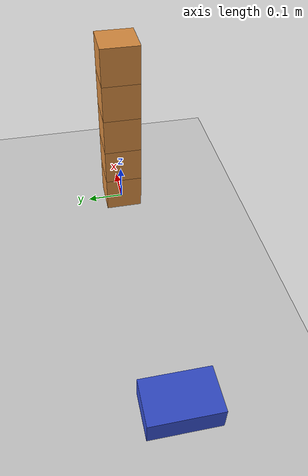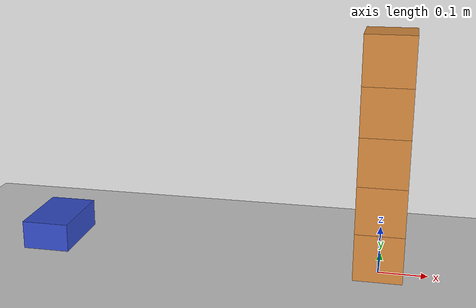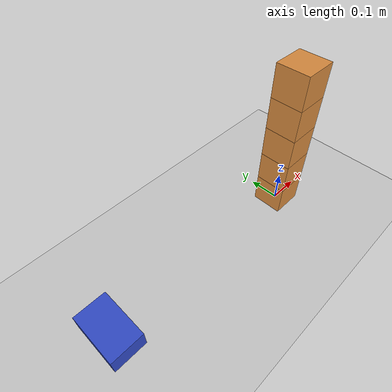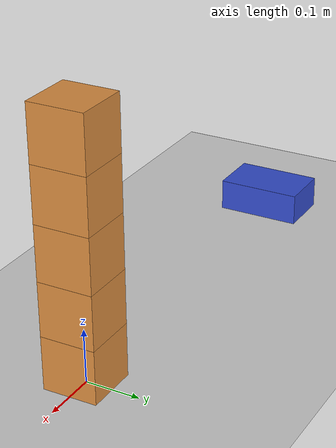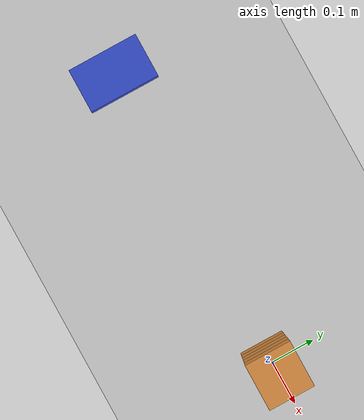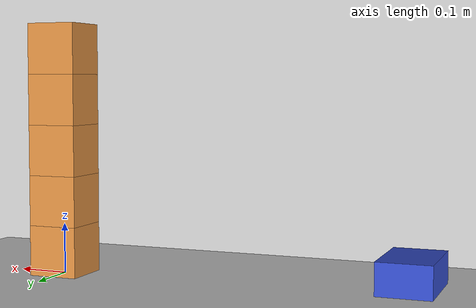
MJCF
<mujoco model="toppling_stack">
  <option timestep="0.002" gravity="0 0 -9.81"/>

  <visual>
    <global offwidth="1280" offheight="720"/>
  </visual>

  <asset>
    <material name="floor_mat" rgba="0.8 0.8 0.8 1"/>
    <material name="block_mat" rgba="0.85 0.55 0.25 1"/>
    <material name="pusher_mat" rgba="0.2 0.3 0.8 1"/>
  </asset>

  <worldbody>
    <light name="sun" pos="0 0 3" dir="0 0 -1" directional="true"/>
    <geom name="floor" type="plane" size="5 5 0.1" material="floor_mat" friction="0.6 0.005 0.0001"/>

    <body name="block1" pos="0 0 0.05">
      <freejoint name="block1_free"/>
      <geom name="block1_geom" type="box" size="0.05 0.05 0.05" density="500" material="block_mat" friction="0.6 0.005 0.0001"/>
    </body>
    <body name="block2" pos="0 0 0.15">
      <freejoint name="block2_free"/>
      <geom name="block2_geom" type="box" size="0.05 0.05 0.05" density="500" material="block_mat" friction="0.6 0.005 0.0001"/>
    </body>
    <body name="block3" pos="0 0 0.25">
      <freejoint name="block3_free"/>
      <geom name="block3_geom" type="box" size="0.05 0.05 0.05" density="500" material="block_mat" friction="0.6 0.005 0.0001"/>
    </body>
    <body name="block4" pos="0 0 0.35">
      <freejoint name="block4_free"/>
      <geom name="block4_geom" type="box" size="0.05 0.05 0.05" density="500" material="block_mat" friction="0.6 0.005 0.0001"/>
    </body>
    <body name="block5" pos="0 0 0.45">
      <freejoint name="block5_free"/>
      <geom name="block5_geom" type="box" size="0.05 0.05 0.05" density="500" material="block_mat" friction="0.6 0.005 0.0001"/>
    </body>

    <body name="pusher" pos="-0.7 0 0.05">
      <joint name="pusher_slide" type="slide" axis="1 0 0" damping="0"/>
      <geom name="pusher_geom" type="box" size="0.05 0.08 0.03" mass="20" material="pusher_mat" friction="0.6 0.005 0.0001"/>
    </body>
  </worldbody>

  <keyframe>
    <key name="start" qpos="0 0 0.05 1 0 0 0  0 0 0.15 1 0 0 0  0 0 0.25 1 0 0 0  0 0 0.35 1 0 0 0  0 0 0.45 1 0 0 0  0" qvel="0 0 0 0 0 0  0 0 0 0 0 0  0 0 0 0 0 0  0 0 0 0 0 0  0 0 0 0 0 0  0.6"/>
  </keyframe>
</mujoco>
